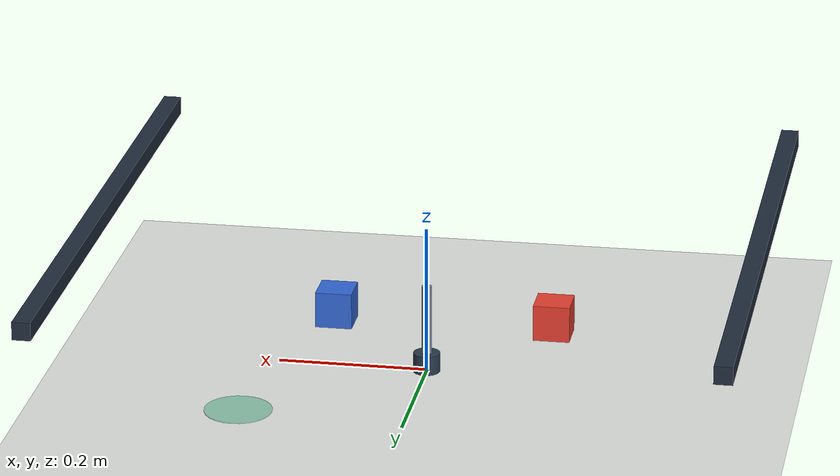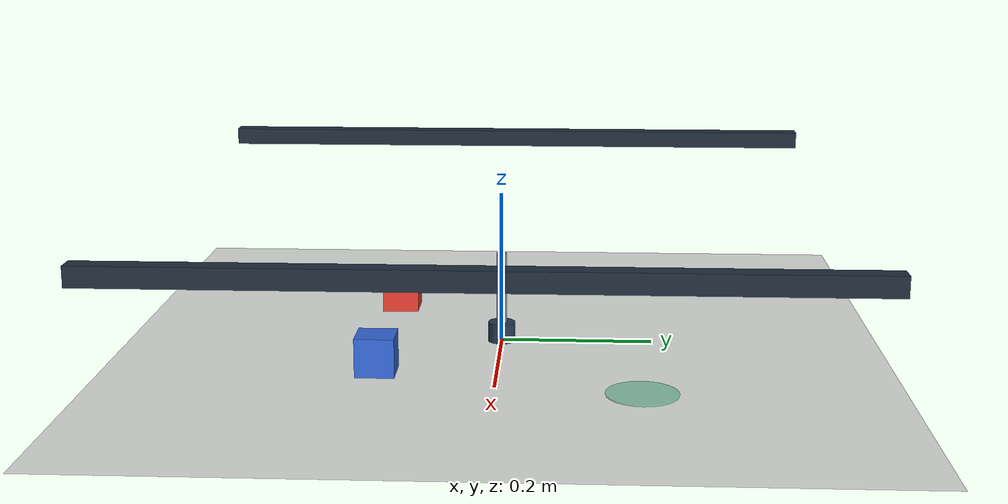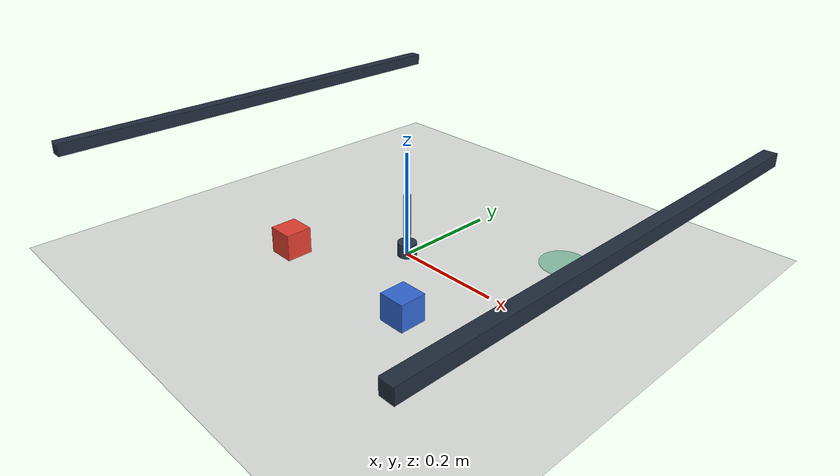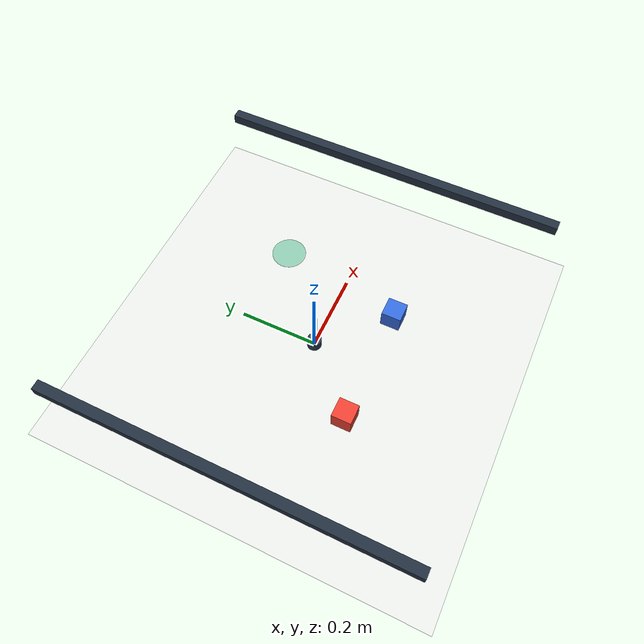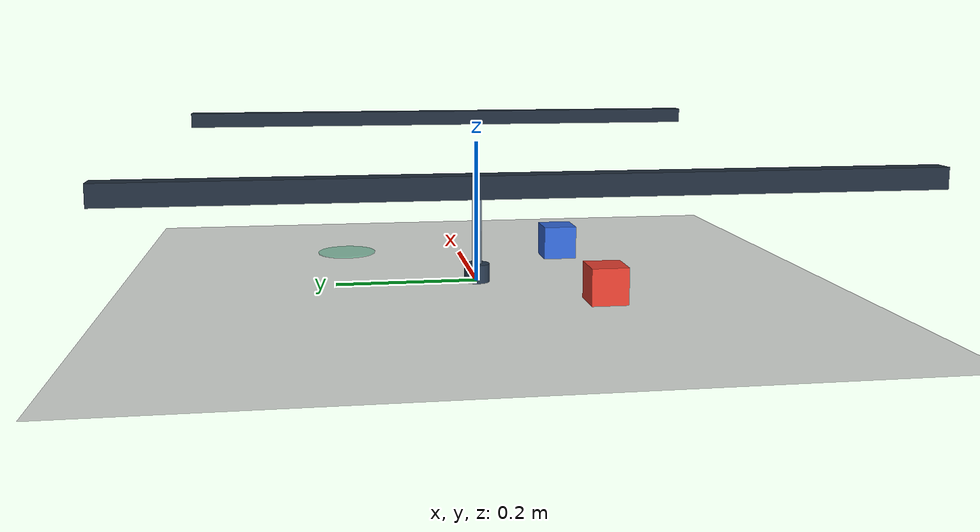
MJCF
<mujoco model="RoboSkill Cartesian pusher">
  <compiler angle="radian"/>
  <option timestep="0.002" integrator="implicitfast" gravity="0 0 -9.81"/>
  <visual><global offwidth="960" offheight="720"/><headlight ambient="0.4 0.4 0.4"/></visual>
  <default>
    <geom friction="0.5 0.005 0.0001" condim="4" solref="0.008 1"/>
    <joint damping="2"/>
  </default>
  <asset>
    <texture name="grid" type="2d" builtin="checker" rgb1="0.85 0.87 0.86" rgb2="0.92 0.93 0.91" width="256" height="256"/>
    <material name="table" texture="grid" texrepeat="8 8" reflectance="0.05"/>
  </asset>
  <worldbody>
    <light pos="0 -0.5 1.5" dir="0 0 -1" diffuse="0.8 0.8 0.8"/>
    <camera name="overview" pos="0.85 -1.1 1.2" xyaxes="0.79 0.61 0 -0.39 0.50 0.77"/>
    <camera name="top" pos="0 0 1.35" xyaxes="1 0 0 0 1 0"/>
    <geom name="floor" type="plane" size="0.5 0.5 0.03" material="table"/>
    <geom name="rail_left" type="box" pos="-0.44 0 0.2" size="0.012 0.44 0.012" rgba="0.13 0.18 0.24 1" contype="0" conaffinity="0"/>
    <geom name="rail_right" type="box" pos="0.44 0 0.2" size="0.012 0.44 0.012" rgba="0.13 0.18 0.24 1" contype="0" conaffinity="0"/>
    <site name="goal" pos="0.22 0.18 0.002" type="cylinder" size="0.045 0.001" rgba="0.18 0.66 0.46 0.45"/>
    <body name="carriage" pos="0 0 0" gravcomp="1">
      <joint name="x" type="slide" axis="1 0 0" range="-0.42 0.42"/>
      <joint name="y" type="slide" axis="0 1 0" range="-0.42 0.42"/>
      <joint name="z" type="slide" axis="0 0 1" range="0.032 0.22"/>
      <geom name="tool" type="cylinder" size="0.018 0.025" mass="0.4" rgba="0.16 0.23 0.31 1"/>
      <geom name="stem" type="cylinder" pos="0 0 0.07" size="0.007 0.05" mass="0.05" rgba="0.48 0.55 0.62 1" contype="0" conaffinity="0"/>
      <site name="tip" size="0.005" rgba="1 0.65 0.25 1"/>
    </body>
    <body name="red_block" pos="-0.15 -0.15 0.026">
      <freejoint name="red_joint"/>
      <geom name="red_geom" type="box" size="0.025 0.025 0.025" mass="0.08" rgba="0.91 0.25 0.19 1"/>
    </body>
    <body name="blue_block" pos="0.15 -0.15 0.026">
      <freejoint name="blue_joint"/>
      <geom name="blue_geom" type="box" size="0.025 0.025 0.025" mass="0.08" rgba="0.20 0.41 0.85 1"/>
    </body>
  </worldbody>
  <actuator>
    <position joint="x" kp="1500" kv="65" ctrlrange="-0.42 0.42" forcerange="-70 70"/>
    <position joint="y" kp="1500" kv="65" ctrlrange="-0.42 0.42" forcerange="-70 70"/>
    <position joint="z" kp="1500" kv="65" ctrlrange="0.032 0.22" forcerange="-70 70"/>
  </actuator>
</mujoco>
